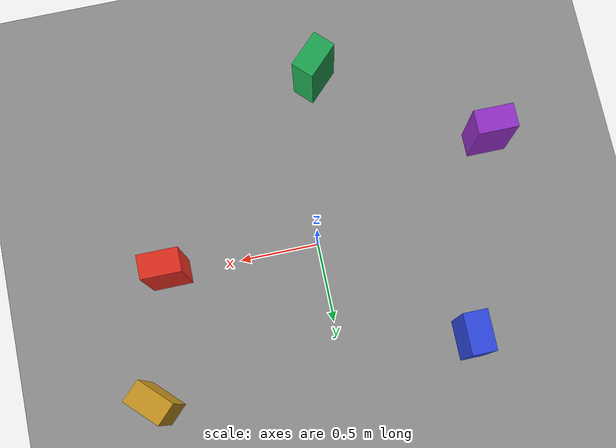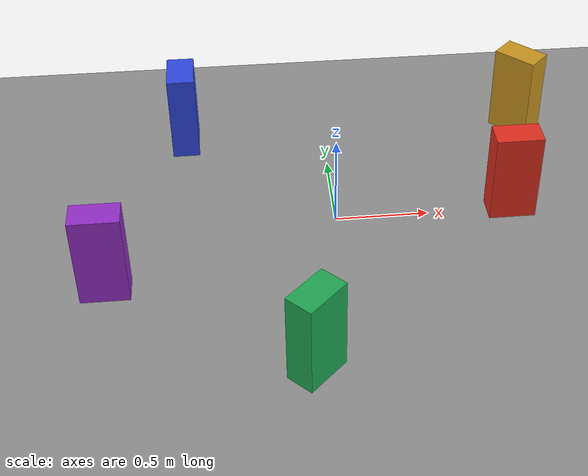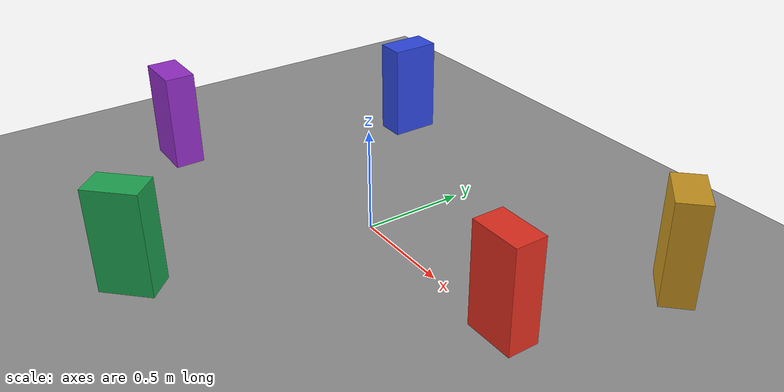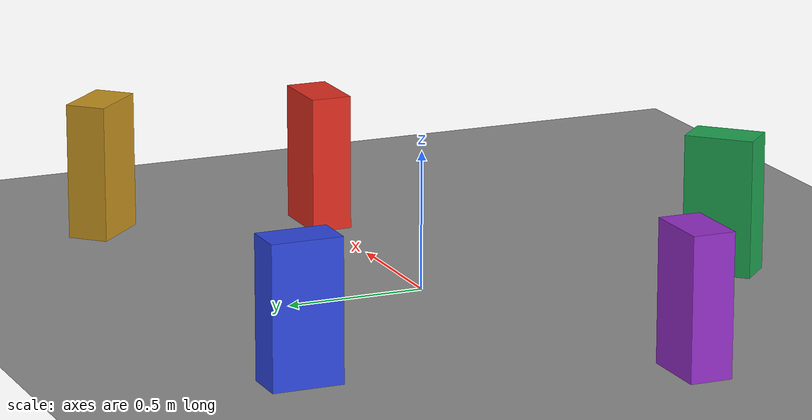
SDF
<sdf version="1.7">
 <world name="retrain_stage7_circular_center_five_boxes">
  <light name="sun" type="directional">
   <pose>0 0 10 0 0 0</pose>
   <diffuse>0.8 0.8 0.8 1</diffuse>
   <specular>0.2 0.2 0.2 1</specular>
   <attenuation>
    <range>1000</range>
    <constant>0.9</constant>
    <linear>0.01</linear>
    <quadratic>0.001</quadratic>
   </attenuation>
   <direction>-0.5 0.1 -0.9</direction>
  </light>
  <model name="ground_plane">
   <static>true</static>
   <link name="link">
    <collision name="collision">
     <geometry><plane><normal>0 0 1</normal><size>100 100</size></plane></geometry>
     <surface>
      <friction><ode><mu>80</mu><mu2>80</mu2></ode></friction>
      <bounce><restitution_coefficient>0</restitution_coefficient><threshold>1000000</threshold></bounce>
      <contact>
       <ode>
        <soft_cfm>0.001</soft_cfm>
        <soft_erp>0.2</soft_erp>
        <kp>1000000</kp>
        <kd>10</kd>
        <max_vel>0.05</max_vel>
        <min_depth>0.001</min_depth>
       </ode>
      </contact>
     </surface>
    </collision>
    <visual name="visual">
     <cast_shadows>0</cast_shadows>
     <geometry><plane><normal>0 0 1</normal><size>100 100</size></plane></geometry>
     <material><ambient>0.56 0.56 0.56 1</ambient><diffuse>0.56 0.56 0.56 1</diffuse></material>
    </visual>
   </link>
  </model>
  <gravity>0 0 -9.8</gravity>
  <physics type="ode">
   <max_step_size>0.001</max_step_size>
   <real_time_factor>1</real_time_factor>
   <real_time_update_rate>1000</real_time_update_rate>
  </physics>
  <scene>
   <ambient>0.45 0.45 0.45 1</ambient>
   <background>0.70 0.72 0.74 1</background>
   <shadows>1</shadows>
  </scene>
  <model name="retrain_stage7_center_box_1">
   <static>true</static>
   <pose>0.95 0.00 0.25 0 0 0</pose>
   <link name="link">
    <collision name="collision">
     <geometry><box><size>0.25 0.15 0.50</size></box></geometry>
     <surface>
      <friction><ode><mu>1.0</mu><mu2>1.0</mu2></ode></friction>
      <bounce><restitution_coefficient>0</restitution_coefficient><threshold>1000000</threshold></bounce>
      <contact>
       <ode>
        <soft_cfm>0.001</soft_cfm>
        <soft_erp>0.2</soft_erp>
        <kp>1000000</kp>
        <kd>10</kd>
        <max_vel>0.05</max_vel>
        <min_depth>0.001</min_depth>
       </ode>
      </contact>
     </surface>
    </collision>
    <visual name="visual">
     <geometry><box><size>0.25 0.15 0.50</size></box></geometry>
     <material><ambient>0.88 0.18 0.12 1</ambient><diffuse>0.88 0.18 0.12 1</diffuse></material>
    </visual>
   </link>
  </model>
  <model name="retrain_stage7_center_box_2">
   <static>true</static>
   <pose>-0.80 0.78 0.25 0 0 1.5708</pose>
   <link name="link">
    <collision name="collision">
     <geometry><box><size>0.25 0.15 0.50</size></box></geometry>
     <surface>
      <friction><ode><mu>1.0</mu><mu2>1.0</mu2></ode></friction>
      <bounce><restitution_coefficient>0</restitution_coefficient><threshold>1000000</threshold></bounce>
      <contact>
       <ode>
        <soft_cfm>0.001</soft_cfm>
        <soft_erp>0.2</soft_erp>
        <kp>1000000</kp>
        <kd>10</kd>
        <max_vel>0.05</max_vel>
        <min_depth>0.001</min_depth>
       </ode>
      </contact>
     </surface>
    </collision>
    <visual name="visual">
     <geometry><box><size>0.25 0.15 0.50</size></box></geometry>
     <material><ambient>0.18 0.28 0.88 1</ambient><diffuse>0.18 0.28 0.88 1</diffuse></material>
    </visual>
   </link>
  </model>
  <model name="retrain_stage7_center_box_3">
   <static>true</static>
   <pose>-0.20 -1.08 0.25 0 0 0.7854</pose>
   <link name="link">
    <collision name="collision">
     <geometry><box><size>0.25 0.15 0.50</size></box></geometry>
     <surface>
      <friction><ode><mu>1.0</mu><mu2>1.0</mu2></ode></friction>
      <bounce><restitution_coefficient>0</restitution_coefficient><threshold>1000000</threshold></bounce>
      <contact>
       <ode>
        <soft_cfm>0.001</soft_cfm>
        <soft_erp>0.2</soft_erp>
        <kp>1000000</kp>
        <kd>10</kd>
        <max_vel>0.05</max_vel>
        <min_depth>0.001</min_depth>
       </ode>
      </contact>
     </surface>
    </collision>
    <visual name="visual">
     <geometry><box><size>0.25 0.15 0.50</size></box></geometry>
     <material><ambient>0.12 0.65 0.32 1</ambient><diffuse>0.12 0.65 0.32 1</diffuse></material>
    </visual>
   </link>
  </model>
  <model name="retrain_stage7_center_box_4">
   <static>true</static>
   <pose>1.15 0.78 0.25 0 0 -0.7854</pose>
   <link name="link">
    <collision name="collision">
     <geometry><box><size>0.25 0.15 0.50</size></box></geometry>
     <surface>
      <friction><ode><mu>1.0</mu><mu2>1.0</mu2></ode></friction>
      <bounce><restitution_coefficient>0</restitution_coefficient><threshold>1000000</threshold></bounce>
      <contact>
       <ode>
        <soft_cfm>0.001</soft_cfm>
        <soft_erp>0.2</soft_erp>
        <kp>1000000</kp>
        <kd>10</kd>
        <max_vel>0.05</max_vel>
        <min_depth>0.001</min_depth>
       </ode>
      </contact>
     </surface>
    </collision>
    <visual name="visual">
     <geometry><box><size>0.25 0.15 0.50</size></box></geometry>
     <material><ambient>0.78 0.58 0.12 1</ambient><diffuse>0.78 0.58 0.12 1</diffuse></material>
    </visual>
   </link>
  </model>
  <model name="retrain_stage7_center_box_5">
   <static>true</static>
   <pose>-1.20 -0.45 0.25 0 0 0</pose>
   <link name="link">
    <collision name="collision">
     <geometry><box><size>0.25 0.15 0.50</size></box></geometry>
     <surface>
      <friction><ode><mu>1.0</mu><mu2>1.0</mu2></ode></friction>
      <bounce><restitution_coefficient>0</restitution_coefficient><threshold>1000000</threshold></bounce>
      <contact>
       <ode>
        <soft_cfm>0.001</soft_cfm>
        <soft_erp>0.2</soft_erp>
        <kp>1000000</kp>
        <kd>10</kd>
        <max_vel>0.05</max_vel>
        <min_depth>0.001</min_depth>
       </ode>
      </contact>
     </surface>
    </collision>
    <visual name="visual">
     <geometry><box><size>0.25 0.15 0.50</size></box></geometry>
     <material><ambient>0.58 0.18 0.78 1</ambient><diffuse>0.58 0.18 0.78 1</diffuse></material>
    </visual>
   </link>
  </model>
  <plugin name="gazebo_ros_state" filename="libgazebo_ros_state.so"><update_rate>1.0</update_rate></plugin>
 </world>
</sdf>
